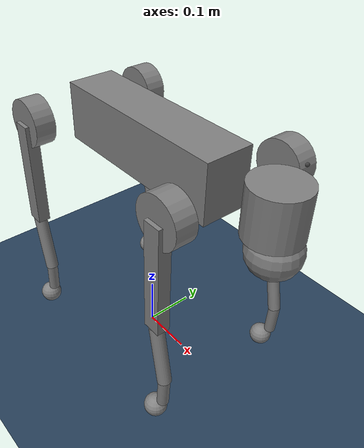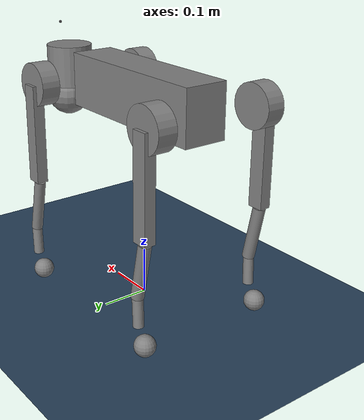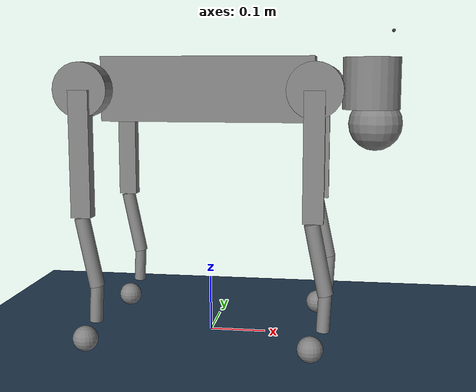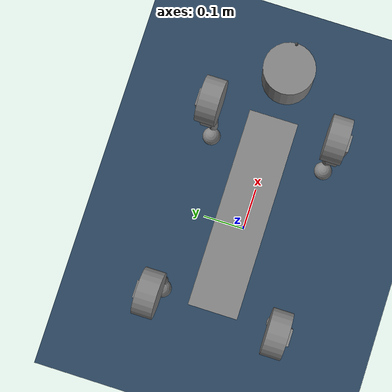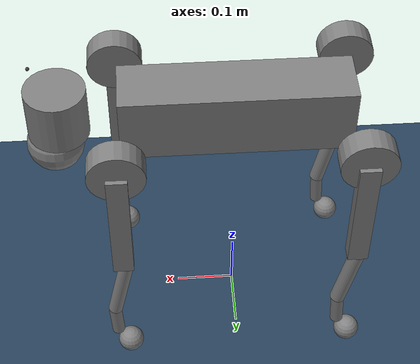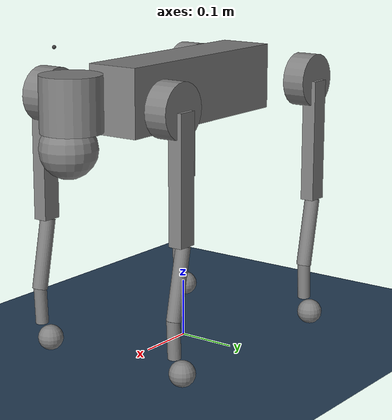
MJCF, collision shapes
<?xml version='1.0' encoding='utf-8'?>
<mujoco model="go2 flat scene">
  <include file="go2_research_lidar.xml" />
  <statistic center="0 0 0.1" extent="0.8" />
  <visual>
    <headlight diffuse="0.6 0.6 0.6" ambient="0.3 0.3 0.3" specular="0 0 0" />
    <rgba haze="0.15 0.25 0.35 1" />
    <global azimuth="-130" elevation="-20" />
  </visual>
  <asset>
    <texture type="skybox" builtin="gradient" rgb1="0.3 0.5 0.7" rgb2="0 0 0" width="512" height="3072" />
    <texture type="2d" name="groundplane" builtin="checker" mark="edge" rgb1="0.2 0.3 0.4" rgb2="0.1 0.2 0.3" markrgb="0.8 0.8 0.8" width="300" height="300" />
    <material name="groundplane" texture="groundplane" texuniform="true" texrepeat="5 5" reflectance="0.2" />
  </asset>
  <worldbody>
    <light pos="0 0 1.5" dir="0 0 -1" directional="true" />
    <geom name="floor" size="0 0 0.05" type="plane" material="groundplane" />
    <camera name="track" mode="trackcom" pos="0 -1.6 0.45" xyaxes="1 0 0 0 0.18 1" />
    <camera name="side" mode="trackcom" pos="0 -1.4 0.1" xyaxes="1 0 0 0 0 1" />
  </worldbody>
</mujoco>

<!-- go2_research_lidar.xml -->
<mujoco model="go2">
  <compiler angle="radian" meshdir="assets" autolimits="true" />
  <option cone="elliptic" impratio="100" />
  <default>
    <default class="go2">
      <geom friction="0.4" margin="0.001" condim="1" />
      <joint axis="0 1 0" damping="0.1" armature="0.01" frictionloss="0.2" />
      <motor ctrlrange="-23.7 23.7" />
      <default class="abduction">
        <joint axis="1 0 0" range="-1.0472 1.0472" />
      </default>
      <default class="hip">
        <default class="front_hip">
          <joint range="-1.5708 3.4907" />
        </default>
        <default class="back_hip">
          <joint range="-0.5236 4.5379" />
        </default>
      </default>
      <default class="knee">
        <joint range="-2.7227 -0.83776" />
        <motor ctrlrange="-45.43 45.43" />
      </default>
      <default class="visual">
        <geom type="mesh" contype="0" conaffinity="0" group="2" />
      </default>
      <default class="collision">
        <geom group="3" />
        <default class="foot">
          <geom size="0.022" pos="-0.002 0 -0.213" priority="1" condim="6" friction="0.4 0.02 0.01" />
        </default>
      </default>
    </default>
  </default>
  <asset>
    <material name="metal" rgba=".9 .95 .95 1" />
    <material name="black" rgba="0 0 0 1" />
    <material name="white" rgba="1 1 1 1" />
    <material name="gray" rgba="0.671705 0.692426 0.774270 1" />
    <mesh file="base_0.obj" />
    <mesh file="base_1.obj" />
    <mesh file="base_2.obj" />
    <mesh file="base_3.obj" />
    <mesh file="base_4.obj" />
    <mesh file="hip_0.obj" />
    <mesh file="hip_1.obj" />
    <mesh file="thigh_0.obj" />
    <mesh file="thigh_1.obj" />
    <mesh file="thigh_mirror_0.obj" />
    <mesh file="thigh_mirror_1.obj" />
    <mesh file="calf_0.obj" />
    <mesh file="calf_1.obj" />
    <mesh file="calf_mirror_0.obj" />
    <mesh file="calf_mirror_1.obj" />
    <mesh file="foot.obj" />
  </asset>
  <worldbody>
    <body name="base_link" pos="0 0 0.445" childclass="go2">
      <inertial pos="0.021112 0 -0.005366" quat="-0.000543471 0.713435 -0.00173769 0.700719" mass="6.921" diaginertia="0.107027 0.0980771 0.0244531" />
      <freejoint />
      <geom mesh="base_0" material="black" class="visual" />
      <geom mesh="base_1" material="black" class="visual" />
      <geom mesh="base_2" material="black" class="visual" />
      <geom mesh="base_3" material="white" class="visual" />
      <geom mesh="base_4" material="gray" class="visual" />
      <geom size="0.1881 0.04675 0.057" type="box" class="collision" />
      <geom size="0.05 0.045" pos="0.285 0 0.01" type="cylinder" class="collision" />
      <geom size="0.047" pos="0.293 0 -0.06" class="collision" />
      <site name="imu" pos="-0.02557 0 0.04232" />
      <body name="FL_hip" pos="0.1934 0.0465 0">
        <inertial pos="-0.0054 0.00194 -0.000105" quat="0.497014 0.499245 0.505462 0.498237" mass="0.678" diaginertia="0.00088403 0.000596003 0.000479967" />
        <joint name="FL_hip_joint" class="abduction" />
        <geom mesh="hip_0" material="metal" class="visual" />
        <geom mesh="hip_1" material="gray" class="visual" />
        <geom size="0.046 0.02" pos="0 0.08 0" quat="1 1 0 0" type="cylinder" class="collision" />
        <body name="FL_thigh" pos="0 0.0955 0">
          <inertial pos="-0.00374 -0.0223 -0.0327" quat="0.829533 0.0847635 -0.0200632 0.551623" mass="1.152" diaginertia="0.00594973 0.00584149 0.000878787" />
          <joint name="FL_thigh_joint" class="front_hip" />
          <geom mesh="thigh_0" material="metal" class="visual" />
          <geom mesh="thigh_1" material="gray" class="visual" />
          <geom size="0.1065 0.01225 0.017" pos="0 0 -0.1065" quat="0.707107 0 0.707107 0" type="box" class="collision" />
          <body name="FL_calf" pos="0 0 -0.213">
            <inertial pos="0.00629595 -0.000622121 -0.141417" quat="0.710672 0.00154099 -0.00450087 0.703508" mass="0.241352" diaginertia="0.0014901 0.00146356 5.31397e-05" />
            <joint name="FL_calf_joint" class="knee" />
            <geom mesh="calf_0" material="gray" class="visual" />
            <geom mesh="calf_1" material="black" class="visual" />
            <geom size="0.012 0.06" pos="0.008 0 -0.06" quat="0.994493 0 -0.104807 0" type="cylinder" class="collision" />
            <geom size="0.011 0.0325" pos="0.02 0 -0.148" quat="0.999688 0 0.0249974 0" type="cylinder" class="collision" />
            <geom pos="0 0 -0.213" mesh="foot" class="visual" material="black" />
            <geom name="FL" class="foot" />
            <body name="FL_foot" pos="0 0 -0.213" />
          </body>
        </body>
      </body>
      <body name="FR_hip" pos="0.1934 -0.0465 0">
        <inertial pos="-0.0054 -0.00194 -0.000105" quat="0.498237 0.505462 0.499245 0.497014" mass="0.678" diaginertia="0.00088403 0.000596003 0.000479967" />
        <joint name="FR_hip_joint" class="abduction" />
        <geom mesh="hip_0" material="metal" class="visual" quat="4.63268e-05 1 0 0" />
        <geom mesh="hip_1" material="gray" class="visual" quat="4.63268e-05 1 0 0" />
        <geom size="0.046 0.02" pos="0 -0.08 0" quat="0.707107 0.707107 0 0" type="cylinder" class="collision" />
        <body name="FR_thigh" pos="0 -0.0955 0">
          <inertial pos="-0.00374 0.0223 -0.0327" quat="0.551623 -0.0200632 0.0847635 0.829533" mass="1.152" diaginertia="0.00594973 0.00584149 0.000878787" />
          <joint name="FR_thigh_joint" class="front_hip" />
          <geom mesh="thigh_mirror_0" material="metal" class="visual" />
          <geom mesh="thigh_mirror_1" material="gray" class="visual" />
          <geom size="0.1065 0.01225 0.017" pos="0 0 -0.1065" quat="0.707107 0 0.707107 0" type="box" class="collision" />
          <body name="FR_calf" pos="0 0 -0.213">
            <inertial pos="0.00629595 0.000622121 -0.141417" quat="0.703508 -0.00450087 0.00154099 0.710672" mass="0.241352" diaginertia="0.0014901 0.00146356 5.31397e-05" />
            <joint name="FR_calf_joint" class="knee" />
            <geom mesh="calf_mirror_0" material="gray" class="visual" />
            <geom mesh="calf_mirror_1" material="black" class="visual" />
            <geom size="0.013 0.06" pos="0.01 0 -0.06" quat="0.995004 0 -0.0998334 0" type="cylinder" class="collision" />
            <geom size="0.011 0.0325" pos="0.02 0 -0.148" quat="0.999688 0 0.0249974 0" type="cylinder" class="collision" />
            <geom pos="0 0 -0.213" mesh="foot" class="visual" material="black" />
            <geom name="FR" class="foot" />
            <body name="FR_foot" pos="0 0 -0.213" />
          </body>
        </body>
      </body>
      <body name="RL_hip" pos="-0.1934 0.0465 0">
        <inertial pos="0.0054 0.00194 -0.000105" quat="0.505462 0.498237 0.497014 0.499245" mass="0.678" diaginertia="0.00088403 0.000596003 0.000479967" />
        <joint name="RL_hip_joint" class="abduction" />
        <geom mesh="hip_0" material="metal" class="visual" quat="4.63268e-05 0 1 0" />
        <geom mesh="hip_1" material="gray" class="visual" quat="4.63268e-05 0 1 0" />
        <geom size="0.046 0.02" pos="0 0.08 0" quat="0.707107 0.707107 0 0" type="cylinder" class="collision" />
        <body name="RL_thigh" pos="0 0.0955 0">
          <inertial pos="-0.00374 -0.0223 -0.0327" quat="0.829533 0.0847635 -0.0200632 0.551623" mass="1.152" diaginertia="0.00594973 0.00584149 0.000878787" />
          <joint name="RL_thigh_joint" class="back_hip" />
          <geom mesh="thigh_0" material="metal" class="visual" />
          <geom mesh="thigh_1" material="gray" class="visual" />
          <geom size="0.1065 0.01225 0.017" pos="0 0 -0.1065" quat="0.707107 0 0.707107 0" type="box" class="collision" />
          <body name="RL_calf" pos="0 0 -0.213">
            <inertial pos="0.00629595 -0.000622121 -0.141417" quat="0.710672 0.00154099 -0.00450087 0.703508" mass="0.241352" diaginertia="0.0014901 0.00146356 5.31397e-05" />
            <joint name="RL_calf_joint" class="knee" />
            <geom mesh="calf_0" material="gray" class="visual" />
            <geom mesh="calf_1" material="black" class="visual" />
            <geom size="0.013 0.06" pos="0.01 0 -0.06" quat="0.995004 0 -0.0998334 0" type="cylinder" class="collision" />
            <geom size="0.011 0.0325" pos="0.02 0 -0.148" quat="0.999688 0 0.0249974 0" type="cylinder" class="collision" />
            <geom pos="0 0 -0.213" mesh="foot" class="visual" material="black" />
            <geom name="RL" class="foot" />
            <body name="RL_foot" pos="0 0 -0.213" />
          </body>
        </body>
      </body>
      <body name="RR_hip" pos="-0.1934 -0.0465 0">
        <inertial pos="0.0054 -0.00194 -0.000105" quat="0.499245 0.497014 0.498237 0.505462" mass="0.678" diaginertia="0.00088403 0.000596003 0.000479967" />
        <joint name="RR_hip_joint" class="abduction" />
        <geom mesh="hip_0" material="metal" class="visual" quat="2.14617e-09 4.63268e-05 4.63268e-05 -1" />
        <geom mesh="hip_1" material="gray" class="visual" quat="2.14617e-09 4.63268e-05 4.63268e-05 -1" />
        <geom size="0.046 0.02" pos="0 -0.08 0" quat="0.707107 0.707107 0 0" type="cylinder" class="collision" />
        <body name="RR_thigh" pos="0 -0.0955 0">
          <inertial pos="-0.00374 0.0223 -0.0327" quat="0.551623 -0.0200632 0.0847635 0.829533" mass="1.152" diaginertia="0.00594973 0.00584149 0.000878787" />
          <joint name="RR_thigh_joint" class="back_hip" />
          <geom mesh="thigh_mirror_0" material="metal" class="visual" />
          <geom mesh="thigh_mirror_1" material="gray" class="visual" />
          <geom size="0.1065 0.01225 0.017" pos="0 0 -0.1065" quat="0.707107 0 0.707107 0" type="box" class="collision" />
          <body name="RR_calf" pos="0 0 -0.213">
            <inertial pos="0.00629595 0.000622121 -0.141417" quat="0.703508 -0.00450087 0.00154099 0.710672" mass="0.241352" diaginertia="0.0014901 0.00146356 5.31397e-05" />
            <joint name="RR_calf_joint" class="knee" />
            <geom mesh="calf_mirror_0" material="gray" class="visual" />
            <geom mesh="calf_mirror_1" material="black" class="visual" />
            <geom size="0.013 0.06" pos="0.01 0 -0.06" quat="0.995004 0 -0.0998334 0" type="cylinder" class="collision" />
            <geom size="0.011 0.0325" pos="0.02 0 -0.148" quat="0.999688 0 0.0249974 0" type="cylinder" class="collision" />
            <geom pos="0 0 -0.213" mesh="foot" class="visual" material="black" />
            <geom name="RR" class="foot" />
            <body name="RR_foot" pos="0 0 -0.213" />
          </body>
        </body>
      </body>
      <site name="research_lidar_ray_00" pos="0.32 0 0.1" quat="0.370481729893 0.910802313166 0.182160462633 0" size="0.003" />
      <site name="research_lidar_ray_01" pos="0.32 0 0.1" quat="0.230120872343 0.903558283959 0.361423313583 0" size="0.003" />
      <site name="research_lidar_ray_02" pos="0.32 0 0.1" quat="0.0918421213725 -0 0.995773581062 0" size="0.003" />
      <site name="research_lidar_ray_03" pos="0.32 0 0.1" quat="0.230120872343 -0.903558283959 0.361423313583 0" size="0.003" />
      <site name="research_lidar_ray_04" pos="0.32 0 0.1" quat="0.370481729893 -0.910802313166 0.182160462633 0" size="0.003" />
      <site name="research_lidar_ray_05" pos="0.32 0 0.1" quat="0.411756577988 0.746561028619 0.522592720033 0" size="0.003" />
      <site name="research_lidar_ray_06" pos="0.32 0 0.1" quat="0.33106916296 0.54846013225 0.76784418515 0" size="0.003" />
      <site name="research_lidar_ray_07" pos="0.32 0 0.1" quat="0.284606671823 -0 0.958644377417 0" size="0.003" />
      <site name="research_lidar_ray_08" pos="0.32 0 0.1" quat="0.33106916296 -0.54846013225 0.76784418515 0" size="0.003" />
      <site name="research_lidar_ray_09" pos="0.32 0 0.1" quat="0.411756577988 -0.746561028619 0.522592720033 0" size="0.003" />
      <site name="research_lidar_ray_10" pos="0.32 0 0.1" quat="0.465338943994 0.566648063212 0.679977675855 0" size="0.003" />
      <site name="research_lidar_ray_11" pos="0.32 0 0.1" quat="0.425873009361 0.347993440881 0.835184258114 0" size="0.003" />
      <site name="research_lidar_ray_12" pos="0.32 0 0.1" quat="0.407891945504 -0 0.913030208039 0" size="0.003" />
      <site name="research_lidar_ray_13" pos="0.32 0 0.1" quat="0.425873009361 -0.347993440881 0.835184258114 0" size="0.003" />
      <site name="research_lidar_ray_14" pos="0.32 0 0.1" quat="0.465338943994 -0.566648063212 0.679977675855 0" size="0.003" />
      <site name="research_lidar_ray_15" pos="0.32 0 0.1" quat="0.510599613023 0.435945338423 0.741107075319 0" size="0.003" />
      <site name="research_lidar_ray_16" pos="0.32 0 0.1" quat="0.49057366328 0.245879657157 0.835990834335 0" size="0.003" />
      <site name="research_lidar_ray_17" pos="0.32 0 0.1" quat="0.482462150171 -0 0.875916818912 0" size="0.003" />
      <site name="research_lidar_ray_18" pos="0.32 0 0.1" quat="0.49057366328 -0.245879657157 0.835990834335 0" size="0.003" />
      <site name="research_lidar_ray_19" pos="0.32 0 0.1" quat="0.510599613023 -0.435945338423 0.741107075319 0" size="0.003" />
      <site name="research_lidar_ray_20" pos="0.32 0 0.1" quat="0.5447757151 0.347007614163 0.763416751159 0" size="0.003" />
      <site name="research_lidar_ray_21" pos="0.32 0 0.1" quat="0.533783392839 0.187407513474 0.824593059286 0" size="0.003" />
      <site name="research_lidar_ray_22" pos="0.32 0 0.1" quat="0.529609760406 -0 0.848241417099 0" size="0.003" />
      <site name="research_lidar_ray_23" pos="0.32 0 0.1" quat="0.533783392839 -0.187407513474 0.824593059286 0" size="0.003" />
      <site name="research_lidar_ray_24" pos="0.32 0 0.1" quat="0.5447757151 -0.347007614163 0.763416751159 0" size="0.003" />
    </body>
  </worldbody>
  <actuator>
    <motor class="abduction" name="FR_hip" joint="FR_hip_joint" />
    <motor class="hip" name="FR_thigh" joint="FR_thigh_joint" />
    <motor class="knee" name="FR_calf" joint="FR_calf_joint" />
    <motor class="abduction" name="FL_hip" joint="FL_hip_joint" />
    <motor class="hip" name="FL_thigh" joint="FL_thigh_joint" />
    <motor class="knee" name="FL_calf" joint="FL_calf_joint" />
    <motor class="abduction" name="RR_hip" joint="RR_hip_joint" />
    <motor class="hip" name="RR_thigh" joint="RR_thigh_joint" />
    <motor class="knee" name="RR_calf" joint="RR_calf_joint" />
    <motor class="abduction" name="RL_hip" joint="RL_hip_joint" />
    <motor class="hip" name="RL_thigh" joint="RL_thigh_joint" />
    <motor class="knee" name="RL_calf" joint="RL_calf_joint" />
  </actuator>
  <sensor>
    <jointpos name="FR_hip_pos" joint="FR_hip_joint" />
    <jointpos name="FR_thigh_pos" joint="FR_thigh_joint" />
    <jointpos name="FR_calf_pos" joint="FR_calf_joint" />
    <jointpos name="FL_hip_pos" joint="FL_hip_joint" />
    <jointpos name="FL_thigh_pos" joint="FL_thigh_joint" />
    <jointpos name="FL_calf_pos" joint="FL_calf_joint" />
    <jointpos name="RR_hip_pos" joint="RR_hip_joint" />
    <jointpos name="RR_thigh_pos" joint="RR_thigh_joint" />
    <jointpos name="RR_calf_pos" joint="RR_calf_joint" />
    <jointpos name="RL_hip_pos" joint="RL_hip_joint" />
    <jointpos name="RL_thigh_pos" joint="RL_thigh_joint" />
    <jointpos name="RL_calf_pos" joint="RL_calf_joint" />
    <jointvel name="FR_hip_vel" joint="FR_hip_joint" />
    <jointvel name="FR_thigh_vel" joint="FR_thigh_joint" />
    <jointvel name="FR_calf_vel" joint="FR_calf_joint" />
    <jointvel name="FL_hip_vel" joint="FL_hip_joint" />
    <jointvel name="FL_thigh_vel" joint="FL_thigh_joint" />
    <jointvel name="FL_calf_vel" joint="FL_calf_joint" />
    <jointvel name="RR_hip_vel" joint="RR_hip_joint" />
    <jointvel name="RR_thigh_vel" joint="RR_thigh_joint" />
    <jointvel name="RR_calf_vel" joint="RR_calf_joint" />
    <jointvel name="RL_hip_vel" joint="RL_hip_joint" />
    <jointvel name="RL_thigh_vel" joint="RL_thigh_joint" />
    <jointvel name="RL_calf_vel" joint="RL_calf_joint" />
    <jointactuatorfrc name="FR_hip_torque" joint="FR_hip_joint" noise="0.01" />
    <jointactuatorfrc name="FR_thigh_torque" joint="FR_thigh_joint" noise="0.01" />
    <jointactuatorfrc name="FR_calf_torque" joint="FR_calf_joint" noise="0.01" />
    <jointactuatorfrc name="FL_hip_torque" joint="FL_hip_joint" noise="0.01" />
    <jointactuatorfrc name="FL_thigh_torque" joint="FL_thigh_joint" noise="0.01" />
    <jointactuatorfrc name="FL_calf_torque" joint="FL_calf_joint" noise="0.01" />
    <jointactuatorfrc name="RR_hip_torque" joint="RR_hip_joint" noise="0.01" />
    <jointactuatorfrc name="RR_thigh_torque" joint="RR_thigh_joint" noise="0.01" />
    <jointactuatorfrc name="RR_calf_torque" joint="RR_calf_joint" noise="0.01" />
    <jointactuatorfrc name="RL_hip_torque" joint="RL_hip_joint" noise="0.01" />
    <jointactuatorfrc name="RL_thigh_torque" joint="RL_thigh_joint" noise="0.01" />
    <jointactuatorfrc name="RL_calf_torque" joint="RL_calf_joint" noise="0.01" />
    <framequat name="imu_quat" objtype="site" objname="imu" />
    <gyro name="imu_gyro" site="imu" />
    <accelerometer name="imu_acc" site="imu" />
    <framepos name="frame_pos" objtype="site" objname="imu" />
    <framelinvel name="frame_vel" objtype="site" objname="imu" />
    <rangefinder name="research_lidar_ray_00" site="research_lidar_ray_00" />
    <rangefinder name="research_lidar_ray_01" site="research_lidar_ray_01" />
    <rangefinder name="research_lidar_ray_02" site="research_lidar_ray_02" />
    <rangefinder name="research_lidar_ray_03" site="research_lidar_ray_03" />
    <rangefinder name="research_lidar_ray_04" site="research_lidar_ray_04" />
    <rangefinder name="research_lidar_ray_05" site="research_lidar_ray_05" />
    <rangefinder name="research_lidar_ray_06" site="research_lidar_ray_06" />
    <rangefinder name="research_lidar_ray_07" site="research_lidar_ray_07" />
    <rangefinder name="research_lidar_ray_08" site="research_lidar_ray_08" />
    <rangefinder name="research_lidar_ray_09" site="research_lidar_ray_09" />
    <rangefinder name="research_lidar_ray_10" site="research_lidar_ray_10" />
    <rangefinder name="research_lidar_ray_11" site="research_lidar_ray_11" />
    <rangefinder name="research_lidar_ray_12" site="research_lidar_ray_12" />
    <rangefinder name="research_lidar_ray_13" site="research_lidar_ray_13" />
    <rangefinder name="research_lidar_ray_14" site="research_lidar_ray_14" />
    <rangefinder name="research_lidar_ray_15" site="research_lidar_ray_15" />
    <rangefinder name="research_lidar_ray_16" site="research_lidar_ray_16" />
    <rangefinder name="research_lidar_ray_17" site="research_lidar_ray_17" />
    <rangefinder name="research_lidar_ray_18" site="research_lidar_ray_18" />
    <rangefinder name="research_lidar_ray_19" site="research_lidar_ray_19" />
    <rangefinder name="research_lidar_ray_20" site="research_lidar_ray_20" />
    <rangefinder name="research_lidar_ray_21" site="research_lidar_ray_21" />
    <rangefinder name="research_lidar_ray_22" site="research_lidar_ray_22" />
    <rangefinder name="research_lidar_ray_23" site="research_lidar_ray_23" />
    <rangefinder name="research_lidar_ray_24" site="research_lidar_ray_24" />
  </sensor>
  <keyframe>
    <key name="home" qpos="0 0 0.27 1 0 0 0 0 0.9 -1.8 0 0.9 -1.8 0 0.9 -1.8 0 0.9 -1.8" ctrl="0 0.9 -1.8 0 0.9 -1.8 0 0.9 -1.8 0 0.9 -1.8" />
  </keyframe>
</mujoco>
